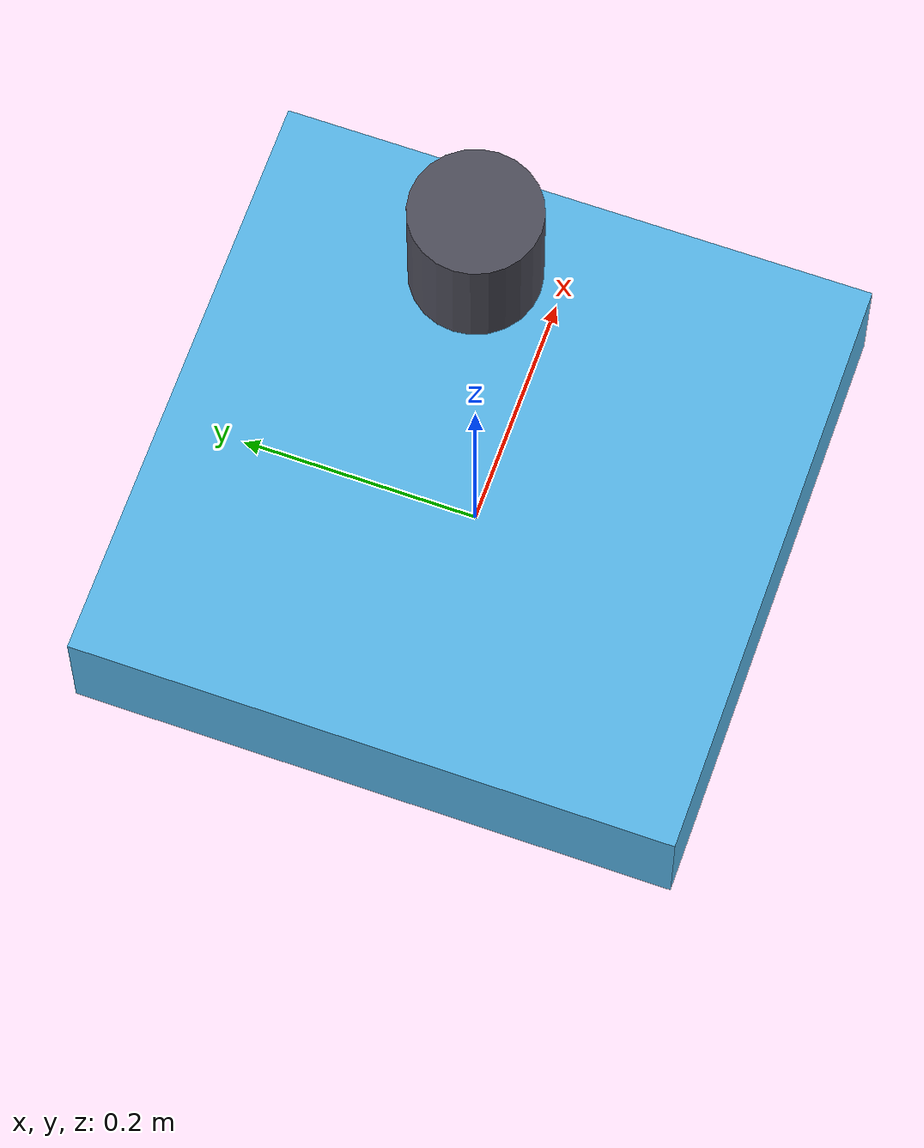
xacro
<?xml version="1.0"?>
<robot xmlns:xacro="http://www.ros.org/wiki/xacro" name="example">
  <xacro:arg name="gpu" default="false"/>
  <xacro:property name="gpu" value="$(arg gpu)" />
  <xacro:arg name="organize_cloud" default="true"/>
  <xacro:property name="organize_cloud" value="$(arg organize_cloud)" />

  <!-- Base Footprint -->
  <link name="base_footprint" />

  <!-- Base Link -->
  <joint name="footprint" type="fixed" >
   <parent link="base_footprint" />
    <child link="base_link" />
    <origin xyz="0 0 0.05" rpy="0 0 0" />
  </joint>
  <link name="base_link" >
    <visual>
      <geometry>
        <box size="0.5 0.5 0.1" />
      </geometry>
    </visual>
    <collision>
      <geometry>
        <box size="0.5 0.5 0.1" />
      </geometry>
    </collision>
    <inertial>
      <origin xyz="0 0 0"/>
      <mass value="10"/>
      <inertia ixx="3.0" ixy="0.0" ixz="0.0"
               iyy="3.0" iyz="0.0"
               izz="3.0" />
    </inertial>
  </link>

  <xacro:include filename="$(find velodyne_description)/urdf/imu.urdf.xacro"/>
  <xacro:imu parent="base_link" name="imu_link" topic="/imu">
    <origin xyz="0 0 0" rpy="0 0 0" />
  </xacro:imu>

  <xacro:include filename="$(find velodyne_description)/urdf/RS-Helios-5515.urdf.xacro"/>
  <xacro:RS-Helios-5515 parent="base_link" name="rslidar" topic="/rslidar_points" organize_cloud="${organize_cloud}" hz="10" samples="1800" gpu="${gpu}">
    <origin xyz="0 0 0.4" rpy="0 0 0" />
  </xacro:RS-Helios-5515>

</robot>

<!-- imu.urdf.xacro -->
<robot xmlns:xacro="http://www.ros.org/wiki/xacro" name="imu">
  <xacro:macro name="imu" params="*origin parent:=base_link name:=imu_link topic:=/imu hz:=100">

    <joint name="${name}_joint" type="fixed">
      <xacro:insert_block name="origin" />
      <parent link="${parent}"/>
      <child link="${name}"/>
    </joint>

    <link name="${name}">
      <inertial>
        <mass value="0.01"/>
        <origin xyz="0 0 0"/>
        <inertia ixx="1e-6" ixy="0" ixz="0" iyy="1e-6" iyz="0" izz="1e-6"/>
      </inertial>
    </link>

    <gazebo reference="${name}">
      <sensor name="${name}_sensor" type="imu">
        <always_on>true</always_on>
        <update_rate>${hz}</update_rate>
        <visualize>false</visualize>
        <plugin name="${name}_plugin" filename="libgazebo_ros_imu_sensor.so">
          <ros>
            <remapping>~/out:=${topic}</remapping>
          </ros>
          <frame_name>${name}</frame_name>
          <initial_orientation_as_reference>false</initial_orientation_as_reference>
        </plugin>
      </sensor>
    </gazebo>

  </xacro:macro>
</robot>

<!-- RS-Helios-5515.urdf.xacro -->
<robot xmlns:xacro="http://www.ros.org/wiki/xacro" name="RS-Helios-5515">
  <xacro:property name="M_PI" value="3.1415926535897931" />
  <!-- RoboSense RS-Helios 5515: 32-channel, 360° horizontal, -55° to +15° vertical FOV -->
  <xacro:macro name="RS-Helios-5515" params="*origin parent:=base_link name:=rslidar tf_prefix:='' topic:=/rslidar_points organize_cloud:=true hz:=10 lasers:=32 samples:=1800 collision_range:=0.2 min_range:=0.2 max_range:=150.0 noise:=0.008 min_angle:=-${M_PI} max_angle:=${M_PI} gpu:=false threads:=0">

    <joint name="${name}_base_mount_joint" type="fixed">
      <xacro:insert_block name="origin" />
      <parent link="${parent}"/>
      <child link="${name}_base_link"/>
    </joint>

    <link name="${name}_base_link">
      <inertial>
        <mass value="1.0"/>
        <origin xyz="0 0 0.05"/>
        <inertia ixx="${(1.0 * (3.0*0.05*0.05 + 0.1*0.1)) / 12.0}" ixy="0" ixz="0"
          iyy="${(1.0 * (3.0*0.05*0.05 + 0.1*0.1)) / 12.0}" iyz="0"
          izz="${0.5 * 1.0 * (0.05*0.05)}"/>
      </inertial>
      <visual>
        <origin xyz="0 0 0.05" rpy="0 0 0"/>
        <geometry>
          <cylinder radius="0.05" length="0.1"/>
        </geometry>
        <material name="rs_helios_gray">
          <color rgba="0.3 0.3 0.35 1.0"/>
        </material>
      </visual>
      <collision>
        <origin xyz="0 0 0.05" rpy="0 0 0"/>
        <geometry>
          <cylinder radius="0.05" length="0.1"/>
        </geometry>
      </collision>
    </link>

    <joint name="${name}_base_scan_joint" type="fixed">
      <origin xyz="0 0 0.1" rpy="0 0 0"/>
      <parent link="${name}_base_link"/>
      <child link="${name}"/>
    </joint>

    <link name="${name}">
      <inertial>
        <mass value="0.01"/>
        <origin xyz="0 0 0"/>
        <inertia ixx="1e-7" ixy="0" ixz="0" iyy="1e-7" iyz="0" izz="1e-7"/>
      </inertial>
      <collision>
        <geometry>
          <sphere radius="0"/>
        </geometry>
      </collision>
    </link>

    <!-- Gazebo requires the velodyne_gazebo_plugins package -->
    <gazebo reference="${name}">
      <xacro:if value="${gpu}">
        <sensor type="gpu_ray" name="${name}-RSHelios5515">
          <pose>0 0 0 0 0 0</pose>
          <visualize>false</visualize>
          <update_rate>${hz}</update_rate>
          <ray>
            <scan>
              <horizontal>
                <samples>${samples}</samples>
                <resolution>1</resolution>
                <min_angle>${min_angle}</min_angle>
                <max_angle>${max_angle}</max_angle>
              </horizontal>
              <vertical>
                <samples>${lasers}</samples>
                <resolution>1</resolution>
                <min_angle>-${55.0*M_PI/180.0}</min_angle>
                <max_angle> ${15.0*M_PI/180.0}</max_angle>
              </vertical>
            </scan>
            <range>
              <min>${collision_range}</min>
              <max>${max_range+1}</max>
              <resolution>0.001</resolution>
            </range>
            <noise>
              <type>gaussian</type>
              <mean>0.0</mean>
              <stddev>0.0</stddev>
            </noise>
          </ray>
          <plugin name="gazebo_ros_laser_controller" filename="libgazebo_ros_velodyne_laser.so">
            <ros>
              <namespace>/${name}</namespace>
              <remapping>~/out:=${topic}</remapping>
            </ros>
            <tf_prefix>${tf_prefix}</tf_prefix>
            <frame_name>${name}</frame_name>
            <organize_cloud>${organize_cloud}</organize_cloud>
            <min_range>${min_range}</min_range>
            <max_range>${max_range}</max_range>
            <gaussian_noise>${noise}</gaussian_noise>
            <threads>${threads}</threads>
          </plugin>
        </sensor>
      </xacro:if>
      <xacro:unless value="${gpu}">
        <sensor type="ray" name="${name}-RSHelios5515">
          <pose>0 0 0 0 0 0</pose>
          <visualize>false</visualize>
          <update_rate>${hz}</update_rate>
          <ray>
            <scan>
              <horizontal>
                <samples>${samples}</samples>
                <resolution>1</resolution>
                <min_angle>${min_angle}</min_angle>
                <max_angle>${max_angle}</max_angle>
              </horizontal>
              <vertical>
                <samples>${lasers}</samples>
                <resolution>1</resolution>
                <min_angle>-${55.0*M_PI/180.0}</min_angle>
                <max_angle> ${15.0*M_PI/180.0}</max_angle>
              </vertical>
            </scan>
            <range>
              <min>${collision_range}</min>
              <max>${max_range+1}</max>
              <resolution>0.001</resolution>
            </range>
            <noise>
              <type>gaussian</type>
              <mean>0.0</mean>
              <stddev>0.0</stddev>
            </noise>
          </ray>
          <plugin name="gazebo_ros_laser_controller" filename="libgazebo_ros_velodyne_laser.so">
            <ros>
              <namespace>/${name}</namespace>
              <remapping>~/out:=${topic}</remapping>
            </ros>
            <tf_prefix>${tf_prefix}</tf_prefix>
            <frame_name>${name}</frame_name>
            <organize_cloud>${organize_cloud}</organize_cloud>
            <min_range>${min_range}</min_range>
            <max_range>${max_range}</max_range>
            <gaussian_noise>${noise}</gaussian_noise>
            <threads>${threads}</threads>
          </plugin>
        </sensor>
      </xacro:unless>
    </gazebo>

  </xacro:macro>
</robot>
